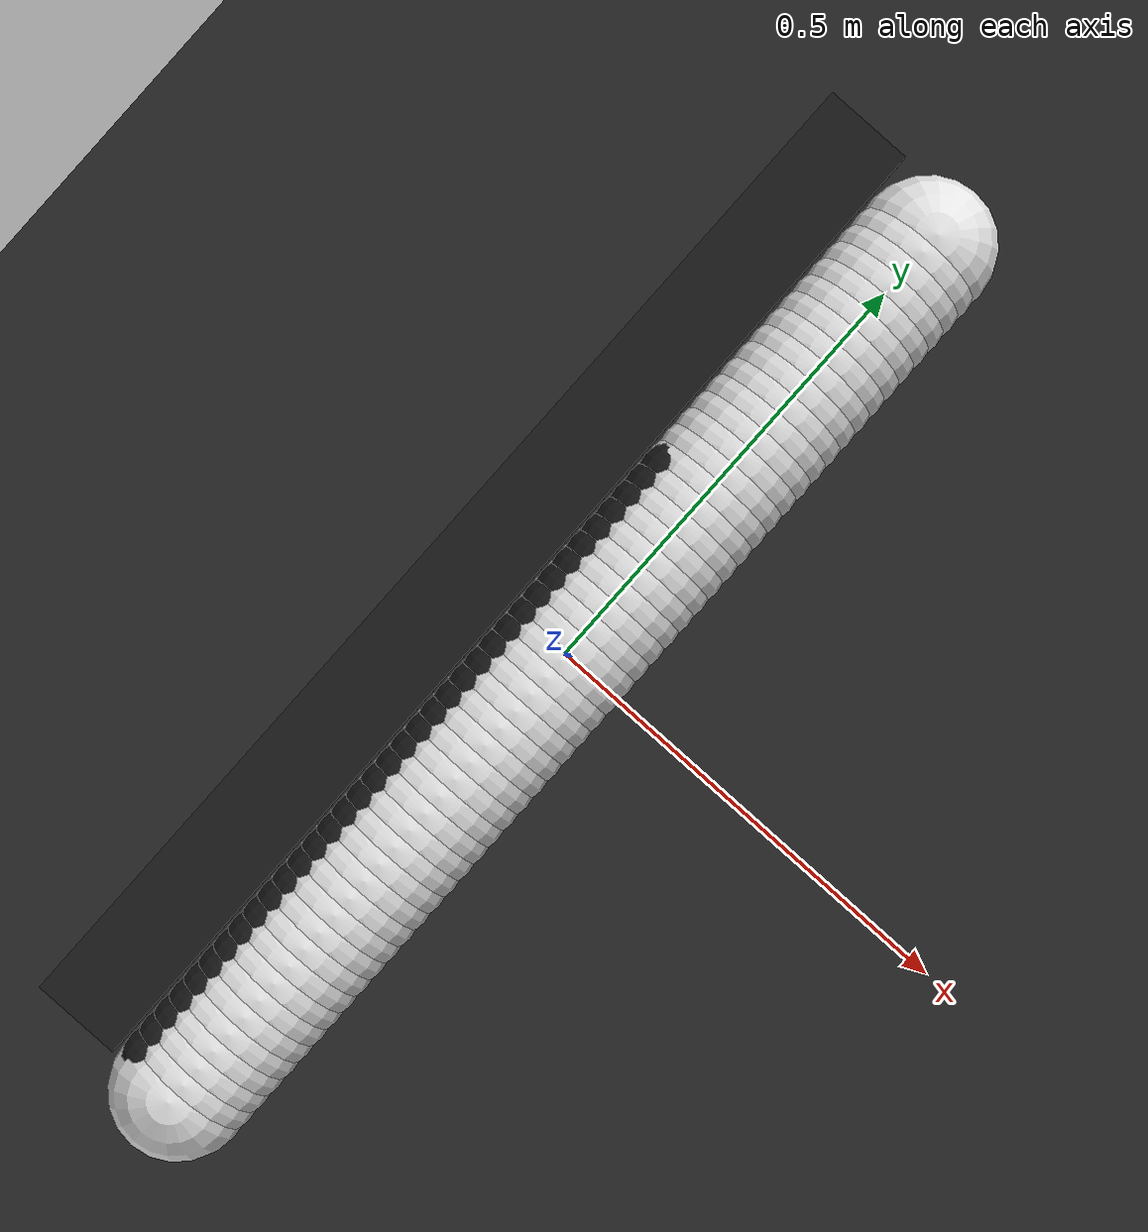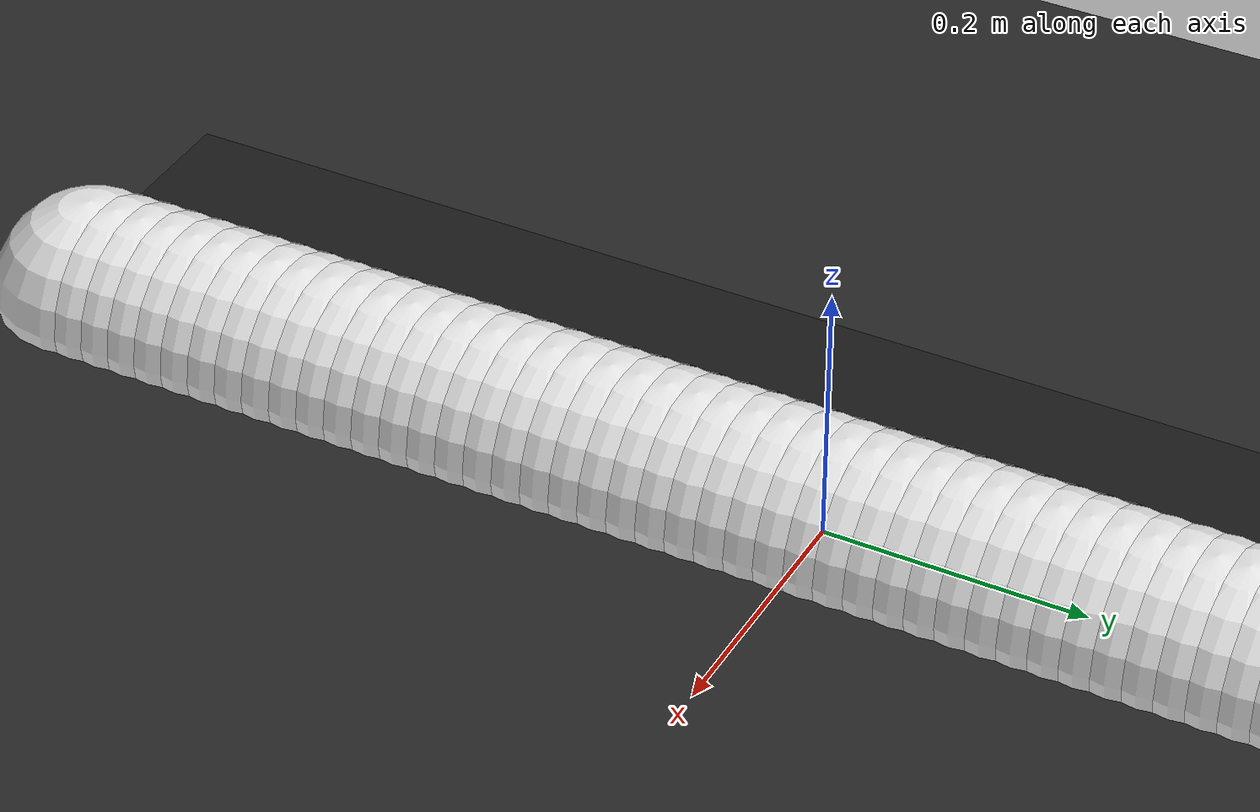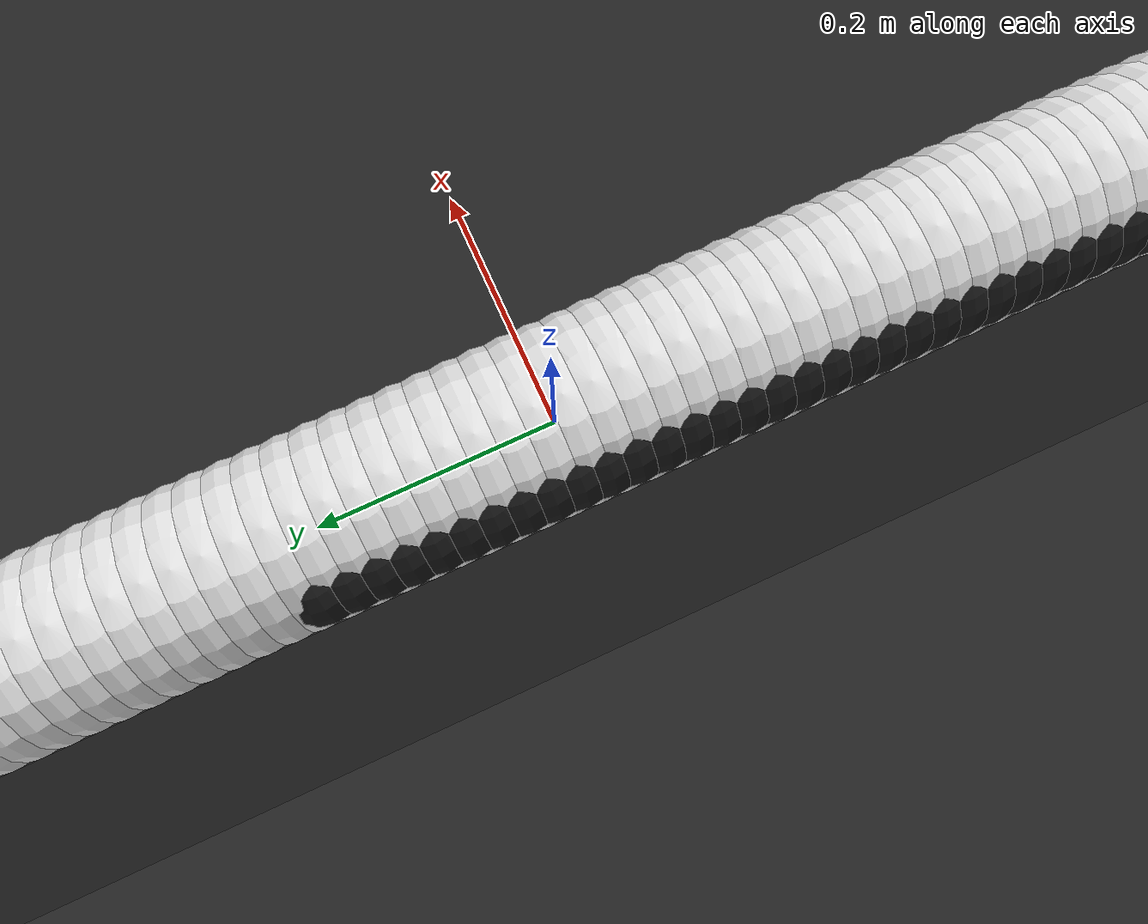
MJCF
<?xml version='1.0' encoding='utf-8'?>
<mujoco model="piano_only"><compiler autolimits="true" angle="radian" /><option timestep="0.005" impratio="10" /><visual><global azimuth="180" elevation="-50" /><map stiffness="400" /><scale forcewidth="0.04" contactwidth="0.2" contactheight="0.03" /></visual><default><default class="piano/"><joint type="hinge" axis="0 1 0" /><geom type="box" contype="0" conaffinity="1" solref="0.01 1" /><site type="box" group="4" rgba="1 0 0 1" /></default><default class="piano/white_key"><joint pos="-0.075 0 0" stiffness="2" range="0 0.06656816377582381" springref="-0.017453292519943295" armature="0.001" damping="0.05" /><geom size="0.075 0.01125 0.01125" material="piano/white" mass="0.04" /><site size="0.075 0.01125 0.01125" /></default><default class="piano/black_key"><joint pos="-0.045 0 0" stiffness="2" range="0 0.08865588186743748" springref="-0.017453292519943295" armature="0.001" damping="0.05" /><geom size="0.045 0.005 0.009" material="piano/black" mass="0.02" /><site size="0.045 0.005 0.009" /></default></default><asset><texture name="grid" type="2d" builtin="checker" width="512" height="512" rgb1=".1 .1 .1" rgb2=".2 .2 .2" /><material name="grid" texture="grid" texrepeat="1 1" texuniform="true" reflectance=".2" /><material name="piano/white" rgba="0.9 0.9 0.9 1" /><material name="piano/black" rgba="0.1 0.1 0.1 1" shininess="1" reflectance="0.2" /><material name="piano/base" rgba="0.1 0.1 0.1 1" shininess="1" /></asset><worldbody><geom name="floor" type="plane" size="0 0 .05" material="grid" contype="0" conaffinity="0" /><body name="piano" pos="0 0 0"><body name="piano/base" pos="-0.127 0 0.02"><geom type="box" size="0.05 0.6105 0.02" material="piano/base" /></body><body name="piano/white_key_0" pos="0 -0.599250 0.01125"><geom class="piano/white_key" /><joint class="piano/white_key" /><site class="piano/white_key" /></body><body name="piano/white_key_1" pos="0 -0.576500 0.01125"><geom class="piano/white_key" /><joint class="piano/white_key" /><site class="piano/white_key" /></body><body name="piano/white_key_2" pos="0 -0.553750 0.01125"><geom class="piano/white_key" /><joint class="piano/white_key" /><site class="piano/white_key" /></body><body name="piano/white_key_3" pos="0 -0.531000 0.01125"><geom class="piano/white_key" /><joint class="piano/white_key" /><site class="piano/white_key" /></body><body name="piano/white_key_4" pos="0 -0.508250 0.01125"><geom class="piano/white_key" /><joint class="piano/white_key" /><site class="piano/white_key" /></body><body name="piano/white_key_5" pos="0 -0.485500 0.01125"><geom class="piano/white_key" /><joint class="piano/white_key" /><site class="piano/white_key" /></body><body name="piano/white_key_6" pos="0 -0.462750 0.01125"><geom class="piano/white_key" /><joint class="piano/white_key" /><site class="piano/white_key" /></body><body name="piano/white_key_7" pos="0 -0.440000 0.01125"><geom class="piano/white_key" /><joint class="piano/white_key" /><site class="piano/white_key" /></body><body name="piano/white_key_8" pos="0 -0.417250 0.01125"><geom class="piano/white_key" /><joint class="piano/white_key" /><site class="piano/white_key" /></body><body name="piano/white_key_9" pos="0 -0.394500 0.01125"><geom class="piano/white_key" /><joint class="piano/white_key" /><site class="piano/white_key" /></body><body name="piano/white_key_10" pos="0 -0.371750 0.01125"><geom class="piano/white_key" /><joint class="piano/white_key" /><site class="piano/white_key" /></body><body name="piano/white_key_11" pos="0 -0.349000 0.01125"><geom class="piano/white_key" /><joint class="piano/white_key" /><site class="piano/white_key" /></body><body name="piano/white_key_12" pos="0 -0.326250 0.01125"><geom class="piano/white_key" /><joint class="piano/white_key" /><site class="piano/white_key" /></body><body name="piano/white_key_13" pos="0 -0.303500 0.01125"><geom class="piano/white_key" /><joint class="piano/white_key" /><site class="piano/white_key" /></body><body name="piano/white_key_14" pos="0 -0.280750 0.01125"><geom class="piano/white_key" /><joint class="piano/white_key" /><site class="piano/white_key" /></body><body name="piano/white_key_15" pos="0 -0.258000 0.01125"><geom class="piano/white_key" /><joint class="piano/white_key" /><site class="piano/white_key" /></body><body name="piano/white_key_16" pos="0 -0.235250 0.01125"><geom class="piano/white_key" /><joint class="piano/white_key" /><site class="piano/white_key" /></body><body name="piano/white_key_17" pos="0 -0.212500 0.01125"><geom class="piano/white_key" /><joint class="piano/white_key" /><site class="piano/white_key" /></body><body name="piano/white_key_18" pos="0 -0.189750 0.01125"><geom class="piano/white_key" /><joint class="piano/white_key" /><site class="piano/white_key" /></body><body name="piano/white_key_19" pos="0 -0.167000 0.01125"><geom class="piano/white_key" /><joint class="piano/white_key" /><site class="piano/white_key" /></body><body name="piano/white_key_20" pos="0 -0.144250 0.01125"><geom class="piano/white_key" /><joint class="piano/white_key" /><site class="piano/white_key" /></body><body name="piano/white_key_21" pos="0 -0.121500 0.01125"><geom class="piano/white_key" /><joint class="piano/white_key" /><site class="piano/white_key" /></body><body name="piano/white_key_22" pos="0 -0.098750 0.01125"><geom class="piano/white_key" /><joint class="piano/white_key" /><site class="piano/white_key" /></body><body name="piano/white_key_23" pos="0 -0.076000 0.01125"><geom class="piano/white_key" /><joint class="piano/white_key" /><site class="piano/white_key" /></body><body name="piano/white_key_24" pos="0 -0.053250 0.01125"><geom class="piano/white_key" /><joint class="piano/white_key" /><site class="piano/white_key" /></body><body name="piano/white_key_25" pos="0 -0.030500 0.01125"><geom class="piano/white_key" /><joint class="piano/white_key" /><site class="piano/white_key" /></body><body name="piano/white_key_26" pos="0 -0.007750 0.01125"><geom class="piano/white_key" /><joint class="piano/white_key" /><site class="piano/white_key" /></body><body name="piano/white_key_27" pos="0 0.015000 0.01125"><geom class="piano/white_key" /><joint class="piano/white_key" /><site class="piano/white_key" /></body><body name="piano/white_key_28" pos="0 0.037750 0.01125"><geom class="piano/white_key" /><joint class="piano/white_key" /><site class="piano/white_key" /></body><body name="piano/white_key_29" pos="0 0.060500 0.01125"><geom class="piano/white_key" /><joint class="piano/white_key" /><site class="piano/white_key" /></body><body name="piano/white_key_30" pos="0 0.083250 0.01125"><geom class="piano/white_key" /><joint class="piano/white_key" /><site class="piano/white_key" /></body><body name="piano/white_key_31" pos="0 0.106000 0.01125"><geom class="piano/white_key" /><joint class="piano/white_key" /><site class="piano/white_key" /></body><body name="piano/white_key_32" pos="0 0.128750 0.01125"><geom class="piano/white_key" /><joint class="piano/white_key" /><site class="piano/white_key" /></body><body name="piano/white_key_33" pos="0 0.151500 0.01125"><geom class="piano/white_key" /><joint class="piano/white_key" /><site class="piano/white_key" /></body><body name="piano/white_key_34" pos="0 0.174250 0.01125"><geom class="piano/white_key" /><joint class="piano/white_key" /><site class="piano/white_key" /></body><body name="piano/white_key_35" pos="0 0.197000 0.01125"><geom class="piano/white_key" /><joint class="piano/white_key" /><site class="piano/white_key" /></body><body name="piano/white_key_36" pos="0 0.219750 0.01125"><geom class="piano/white_key" /><joint class="piano/white_key" /><site class="piano/white_key" /></body><body name="piano/white_key_37" pos="0 0.242500 0.01125"><geom class="piano/white_key" /><joint class="piano/white_key" /><site class="piano/white_key" /></body><body name="piano/white_key_38" pos="0 0.265250 0.01125"><geom class="piano/white_key" /><joint class="piano/white_key" /><site class="piano/white_key" /></body><body name="piano/white_key_39" pos="0 0.288000 0.01125"><geom class="piano/white_key" /><joint class="piano/white_key" /><site class="piano/white_key" /></body><body name="piano/white_key_40" pos="0 0.310750 0.01125"><geom class="piano/white_key" /><joint class="piano/white_key" /><site class="piano/white_key" /></body><body name="piano/white_key_41" pos="0 0.333500 0.01125"><geom class="piano/white_key" /><joint class="piano/white_key" /><site class="piano/white_key" /></body><body name="piano/white_key_42" pos="0 0.356250 0.01125"><geom class="piano/white_key" /><joint class="piano/white_key" /><site class="piano/white_key" /></body><body name="piano/white_key_43" pos="0 0.379000 0.01125"><geom class="piano/white_key" /><joint class="piano/white_key" /><site class="piano/white_key" /></body><body name="piano/white_key_44" pos="0 0.401750 0.01125"><geom class="piano/white_key" /><joint class="piano/white_key" /><site class="piano/white_key" /></body><body name="piano/white_key_45" pos="0 0.424500 0.01125"><geom class="piano/white_key" /><joint class="piano/white_key" /><site class="piano/white_key" /></body><body name="piano/white_key_46" pos="0 0.447250 0.01125"><geom class="piano/white_key" /><joint class="piano/white_key" /><site class="piano/white_key" /></body><body name="piano/white_key_47" pos="0 0.470000 0.01125"><geom class="piano/white_key" /><joint class="piano/white_key" /><site class="piano/white_key" /></body><body name="piano/white_key_48" pos="0 0.492750 0.01125"><geom class="piano/white_key" /><joint class="piano/white_key" /><site class="piano/white_key" /></body><body name="piano/white_key_49" pos="0 0.515500 0.01125"><geom class="piano/white_key" /><joint class="piano/white_key" /><site class="piano/white_key" /></body><body name="piano/white_key_50" pos="0 0.538250 0.01125"><geom class="piano/white_key" /><joint class="piano/white_key" /><site class="piano/white_key" /></body><body name="piano/white_key_51" pos="0 0.561000 0.01125"><geom class="piano/white_key" /><joint class="piano/white_key" /><site class="piano/white_key" /></body><body name="piano/black_key_0" pos="-0.03 -0.587500 0.026"><geom class="piano/black_key" /><joint class="piano/black_key" /><site class="piano/black_key" /></body><body name="piano/black_key_1" pos="-0.03 -0.564750 0.026"><geom class="piano/black_key" /><joint class="piano/black_key" /><site class="piano/black_key" /></body><body name="piano/black_key_2" pos="-0.03 -0.542000 0.026"><geom class="piano/black_key" /><joint class="piano/black_key" /><site class="piano/black_key" /></body><body name="piano/black_key_3" pos="-0.03 -0.519250 0.026"><geom class="piano/black_key" /><joint class="piano/black_key" /><site class="piano/black_key" /></body><body name="piano/black_key_4" pos="-0.03 -0.496500 0.026"><geom class="piano/black_key" /><joint class="piano/black_key" /><site class="piano/black_key" /></body><body name="piano/black_key_5" pos="-0.03 -0.473750 0.026"><geom class="piano/black_key" /><joint class="piano/black_key" /><site class="piano/black_key" /></body><body name="piano/black_key_6" pos="-0.03 -0.451000 0.026"><geom class="piano/black_key" /><joint class="piano/black_key" /><site class="piano/black_key" /></body><body name="piano/black_key_7" pos="-0.03 -0.428250 0.026"><geom class="piano/black_key" /><joint class="piano/black_key" /><site class="piano/black_key" /></body><body name="piano/black_key_8" pos="-0.03 -0.405500 0.026"><geom class="piano/black_key" /><joint class="piano/black_key" /><site class="piano/black_key" /></body><body name="piano/black_key_9" pos="-0.03 -0.382750 0.026"><geom class="piano/black_key" /><joint class="piano/black_key" /><site class="piano/black_key" /></body><body name="piano/black_key_10" pos="-0.03 -0.360000 0.026"><geom class="piano/black_key" /><joint class="piano/black_key" /><site class="piano/black_key" /></body><body name="piano/black_key_11" pos="-0.03 -0.337250 0.026"><geom class="piano/black_key" /><joint class="piano/black_key" /><site class="piano/black_key" /></body><body name="piano/black_key_12" pos="-0.03 -0.314500 0.026"><geom class="piano/black_key" /><joint class="piano/black_key" /><site class="piano/black_key" /></body><body name="piano/black_key_13" pos="-0.03 -0.291750 0.026"><geom class="piano/black_key" /><joint class="piano/black_key" /><site class="piano/black_key" /></body><body name="piano/black_key_14" pos="-0.03 -0.269000 0.026"><geom class="piano/black_key" /><joint class="piano/black_key" /><site class="piano/black_key" /></body><body name="piano/black_key_15" pos="-0.03 -0.246250 0.026"><geom class="piano/black_key" /><joint class="piano/black_key" /><site class="piano/black_key" /></body><body name="piano/black_key_16" pos="-0.03 -0.223500 0.026"><geom class="piano/black_key" /><joint class="piano/black_key" /><site class="piano/black_key" /></body><body name="piano/black_key_17" pos="-0.03 -0.200750 0.026"><geom class="piano/black_key" /><joint class="piano/black_key" /><site class="piano/black_key" /></body><body name="piano/black_key_18" pos="-0.03 -0.178000 0.026"><geom class="piano/black_key" /><joint class="piano/black_key" /><site class="piano/black_key" /></body><body name="piano/black_key_19" pos="-0.03 -0.155250 0.026"><geom class="piano/black_key" /><joint class="piano/black_key" /><site class="piano/black_key" /></body><body name="piano/black_key_20" pos="-0.03 -0.132500 0.026"><geom class="piano/black_key" /><joint class="piano/black_key" /><site class="piano/black_key" /></body><body name="piano/black_key_21" pos="-0.03 -0.109750 0.026"><geom class="piano/black_key" /><joint class="piano/black_key" /><site class="piano/black_key" /></body><body name="piano/black_key_22" pos="-0.03 -0.087000 0.026"><geom class="piano/black_key" /><joint class="piano/black_key" /><site class="piano/black_key" /></body><body name="piano/black_key_23" pos="-0.03 -0.064250 0.026"><geom class="piano/black_key" /><joint class="piano/black_key" /><site class="piano/black_key" /></body><body name="piano/black_key_24" pos="-0.03 -0.041500 0.026"><geom class="piano/black_key" /><joint class="piano/black_key" /><site class="piano/black_key" /></body><body name="piano/black_key_25" pos="-0.03 -0.018750 0.026"><geom class="piano/black_key" /><joint class="piano/black_key" /><site class="piano/black_key" /></body><body name="piano/black_key_26" pos="-0.03 0.004000 0.026"><geom class="piano/black_key" /><joint class="piano/black_key" /><site class="piano/black_key" /></body><body name="piano/black_key_27" pos="-0.03 0.026750 0.026"><geom class="piano/black_key" /><joint class="piano/black_key" /><site class="piano/black_key" /></body><body name="piano/black_key_28" pos="-0.03 0.049500 0.026"><geom class="piano/black_key" /><joint class="piano/black_key" /><site class="piano/black_key" /></body><body name="piano/black_key_29" pos="-0.03 0.072250 0.026"><geom class="piano/black_key" /><joint class="piano/black_key" /><site class="piano/black_key" /></body><body name="piano/black_key_30" pos="-0.03 0.095000 0.026"><geom class="piano/black_key" /><joint class="piano/black_key" /><site class="piano/black_key" /></body><body name="piano/black_key_31" pos="-0.03 0.117750 0.026"><geom class="piano/black_key" /><joint class="piano/black_key" /><site class="piano/black_key" /></body><body name="piano/black_key_32" pos="-0.03 0.140500 0.026"><geom class="piano/black_key" /><joint class="piano/black_key" /><site class="piano/black_key" /></body><body name="piano/black_key_33" pos="-0.03 0.163250 0.026"><geom class="piano/black_key" /><joint class="piano/black_key" /><site class="piano/black_key" /></body><body name="piano/black_key_34" pos="-0.03 0.186000 0.026"><geom class="piano/black_key" /><joint class="piano/black_key" /><site class="piano/black_key" /></body><body name="piano/black_key_35" pos="-0.03 0.208750 0.026"><geom class="piano/black_key" /><joint class="piano/black_key" /><site class="piano/black_key" /></body></body></worldbody><contact /></mujoco>
